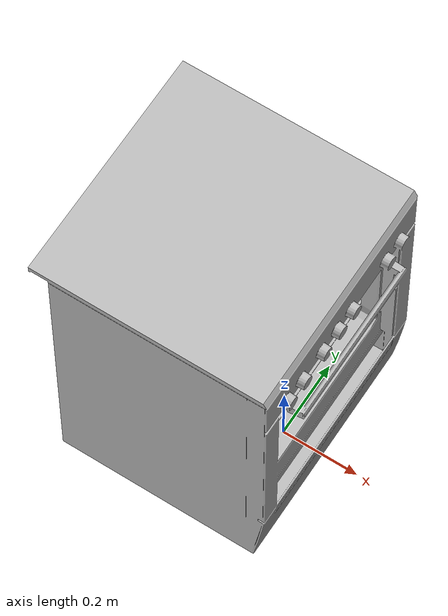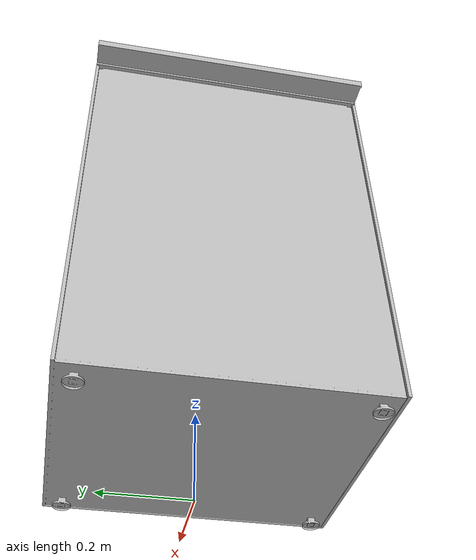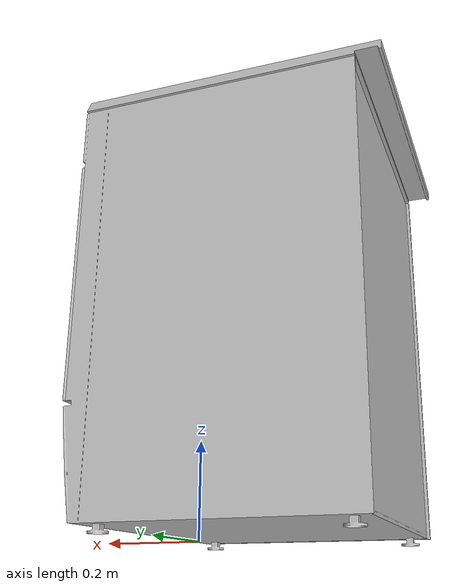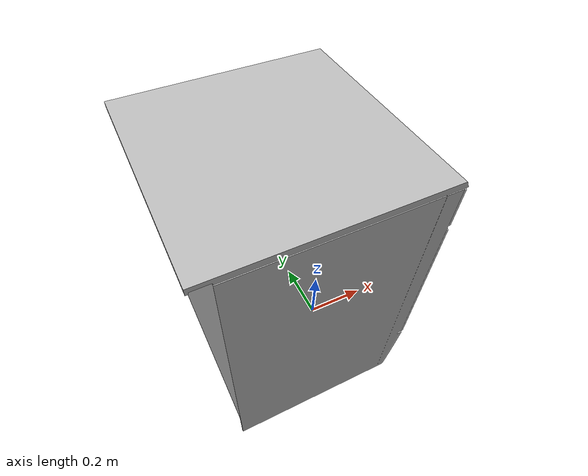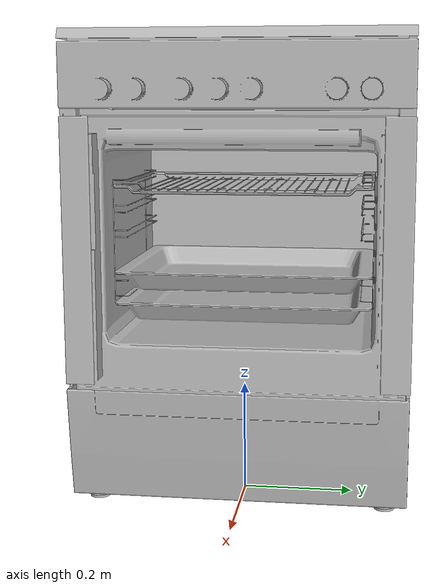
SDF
<?xml version='1.0'?>
<sdf version='1.6'>
  <model name='09_Oven'>
    <link name='body'>
	  <inertial>
        <mass>14</mass>
        <pose frame=''>0 0 0 0 0 0</pose>
        <inertia>
          <ixx>1.3148438333</ixx>
          <ixy>0</ixy>
          <ixz>0</ixz>
          <iyy>1.180967666</iyy>
          <iyz>0</iyz>
          <izz>0.8218571666</izz>
        </inertia>
      </inertial>
      <pose frame=''>0 0 0 0 -0 0</pose>
      <self_collide>0</self_collide>
      <kinematic>0</kinematic>
      <gravity>1</gravity>
      <visual name='visual'>
        <geometry>
          <mesh>
            <uri>model://Oven_a94deec47786_lod0/meshes/visual_LowPoly_09_Oven.dae</uri>
          </mesh>
        </geometry>
		<meta> <layer> 1 </layer></meta>
      </visual>
      <collision name='collision_0'>
        <laser_retro>0</laser_retro>
        <max_contacts>10</max_contacts>
        <pose frame=''>0 0 0 0 -0 0</pose>
        <geometry>
          <mesh>
            <uri>model://Oven_a94deec47786_lod0/meshes/collision_09_Oven.dae</uri>
            <scale>1 1 1</scale>
          </mesh>
        </geometry>
		<surface>
          <friction>
            <ode>
              <mu>0.3</mu>
              <mu2>0.3</mu2>
              <fdir1>0 0 0</fdir1>
              <slip1>0</slip1>
              <slip2>0</slip2>
            </ode>
            <torsional>
              <coefficient>1</coefficient>
              <patch_radius>0</patch_radius>
              <surface_radius>0</surface_radius>
              <use_patch_radius>1</use_patch_radius>
              <ode>
                <slip>0</slip>
              </ode>
            </torsional>
          </friction>
        </surface>
      </collision>
    </link>
    <static>true</static>
  </model>
</sdf>
